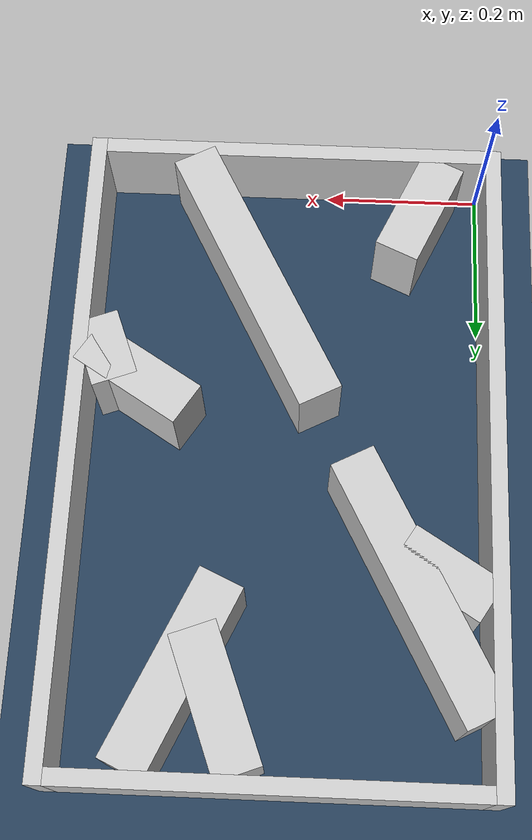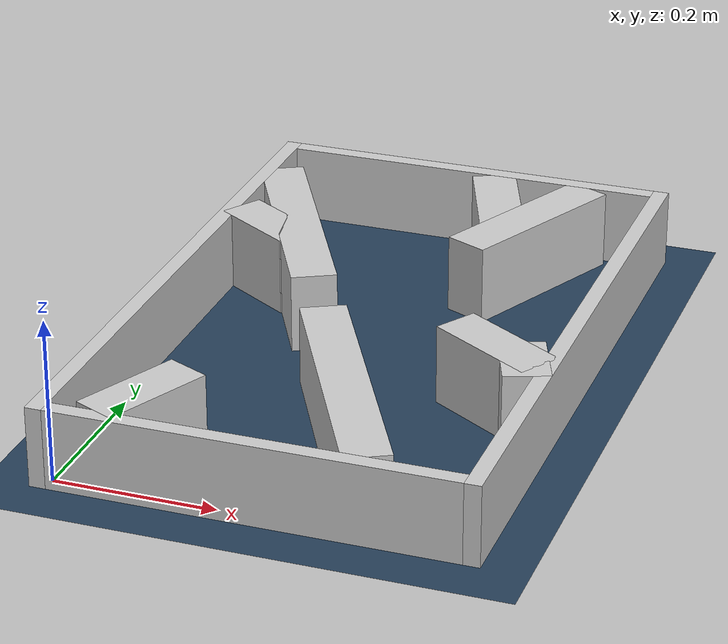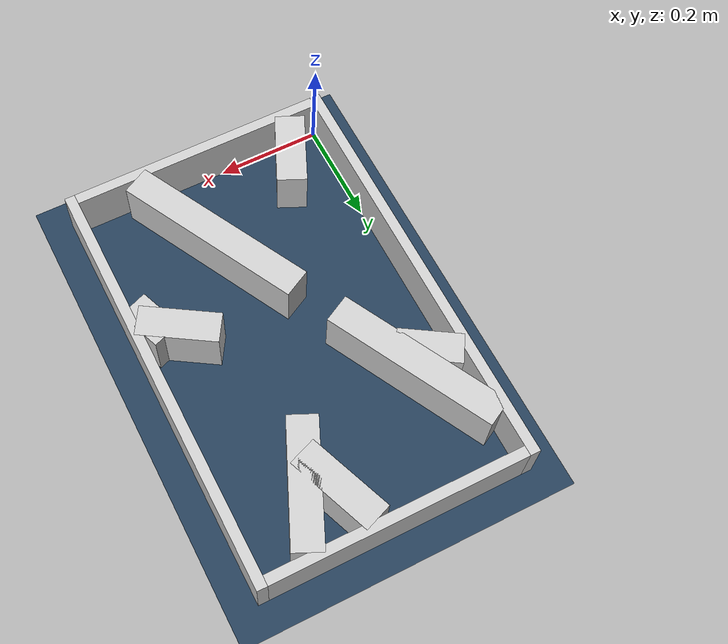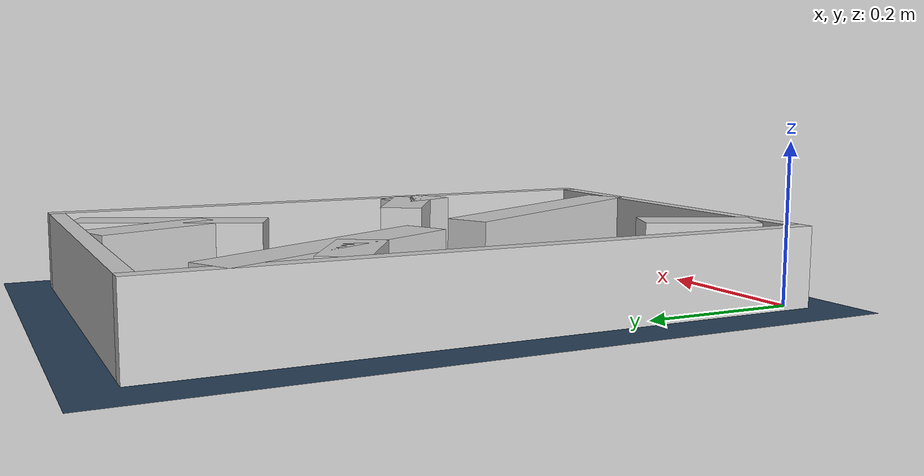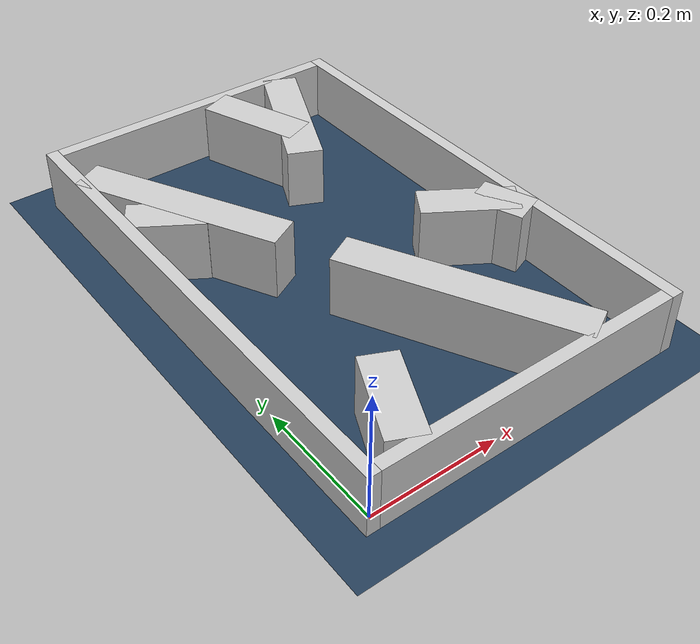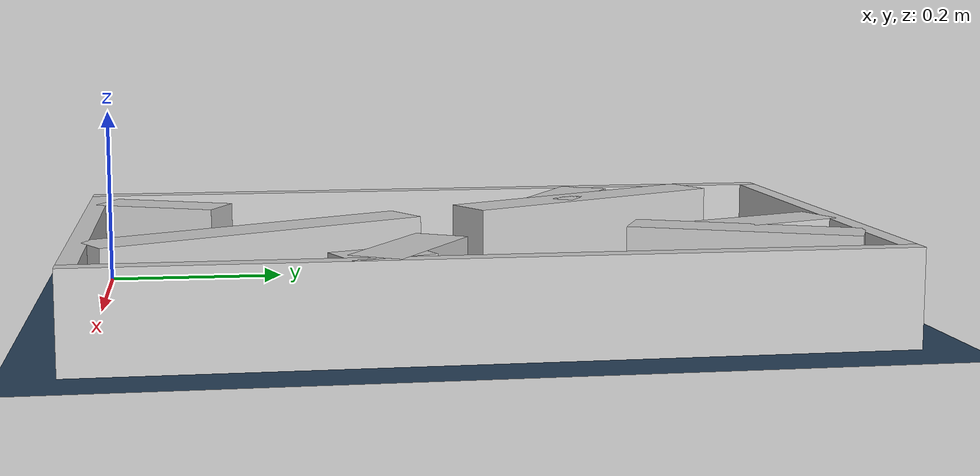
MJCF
<?xml version="1.0" ?>
<mujoco model="generated_real_template">
  <compiler angle="degree"/>
  <option timestep="0.002" integrator="implicitfast" iterations="100" cone="elliptic"/>
  <default>
    <geom density="1"/>
  </default>
  <asset>
    <texture builtin="gradient" height="3072" rgb1="0.3 0.5 0.7" rgb2="0 0 0" type="skybox" width="512"/>
    <texture builtin="checker" height="300" mark="edge" markrgb="0.8 0.8 0.8" name="groundplane" rgb1="0.2 0.3 0.4" rgb2="0.1 0.2 0.3" type="2d" width="300"/>
    <material name="groundplane" reflectance="0.2" texrepeat="5 5" texture="groundplane" texuniform="true"/>
  </asset>
  <worldbody>
    <light dir="0 0 -1" directional="true" pos="0 0 1.5"/>
    <geom name="floor" type="plane" condim="4" friction="0.5 0.005 0.001" material="groundplane" size="0 0 0.05"/>
    <body name="walls">
      <geom name="wall_boundary_left" type="box" condim="4" friction="1.0 0.005 0.0001" rgba="0.8 0.8 0.8 1" pos="-0.010000 0.387500 0.050000" euler="0 0 0.000000" size="0.010000 0.407500 0.050000"/>
      <geom name="wall_boundary_right" type="box" condim="4" friction="1.0 0.005 0.0001" rgba="0.8 0.8 0.8 1" pos="0.500000 0.387500 0.050000" euler="0 0 0.000000" size="0.010000 0.407500 0.050000"/>
      <geom name="wall_boundary_bottom" type="box" condim="4" friction="1.0 0.005 0.0001" rgba="0.8 0.8 0.8 1" pos="0.245000 -0.010000 0.050000" euler="0 0 0.000000" size="0.245000 0.010000 0.050000"/>
      <geom name="wall_boundary_top" type="box" condim="4" friction="1.0 0.005 0.0001" rgba="0.8 0.8 0.8 1" pos="0.245000 0.785000 0.050000" euler="0 0 0.000000" size="0.245000 0.010000 0.050000"/>
      <geom name="wall_inner_1_1" type="box" condim="4" friction="1.0 0.005 0.0001" rgba="0.8 0.8 0.8 1" pos="0.289105 0.164876 0.050000" euler="0 0 117.675124" size="0.186176 0.028500 0.050000"/>
      <geom name="wall_inner_1_2" type="box" condim="4" friction="1.0 0.005 0.0001" rgba="0.8 0.8 0.8 1" pos="0.084328 0.555331 0.050000" euler="0 0 117.675124" size="0.170278 0.028500 0.050000"/>
      <geom name="wall_inner_2_1" type="box" condim="4" friction="1.0 0.005 0.0001" rgba="0.8 0.8 0.8 1" pos="0.083829 0.065180 0.050000" euler="0 0 65.450201" size="0.071658 0.028500 0.050000"/>
      <geom name="wall_inner_2_2" type="box" condim="4" friction="1.0 0.005 0.0001" rgba="0.8 0.8 0.8 1" pos="0.358286 0.666038 0.050000" euler="0 0 65.450201" size="0.119792 0.028500 0.050000"/>
      <geom name="wall_inner_3_1" type="box" condim="4" friction="1.0 0.005 0.0001" rgba="0.8 0.8 0.8 1" pos="0.050738 0.542787 0.050000" euler="0 0 -32.072616" size="0.059877 0.028500 0.050000"/>
      <geom name="wall_inner_3_2" type="box" condim="4" friction="1.0 0.005 0.0001" rgba="0.8 0.8 0.8 1" pos="0.426176 0.307526 0.050000" euler="0 0 -32.072616" size="0.075320 0.028500 0.050000"/>
      <geom name="wall_inner_4_1" type="box" condim="4" friction="1.0 0.005 0.0001" rgba="0.8 0.8 0.8 1" pos="0.308877 0.695378 0.050000" euler="0 0 -69.179540" size="0.085185 0.028500 0.050000"/>
      <geom name="wall_inner_4_2" type="box" condim="4" friction="1.0 0.005 0.0001" rgba="0.8 0.8 0.8 1" pos="0.467935 0.277107 0.050000" euler="0 0 -69.179540" size="0.043398 0.028500 0.050000"/>
    </body>
  </worldbody>
</mujoco>
